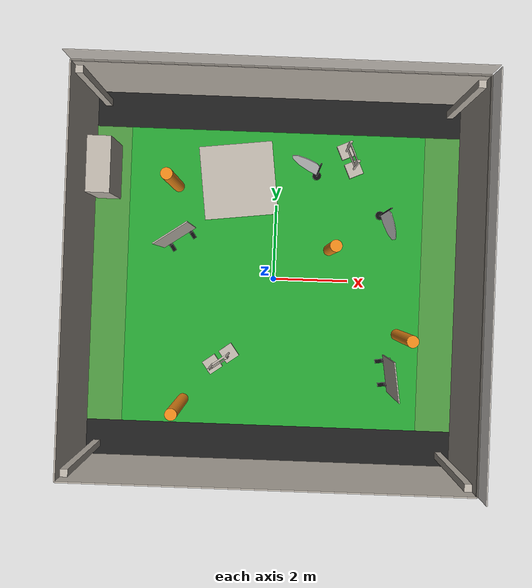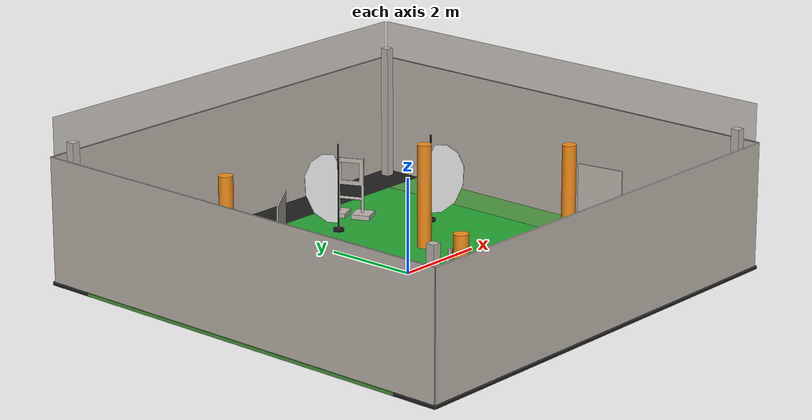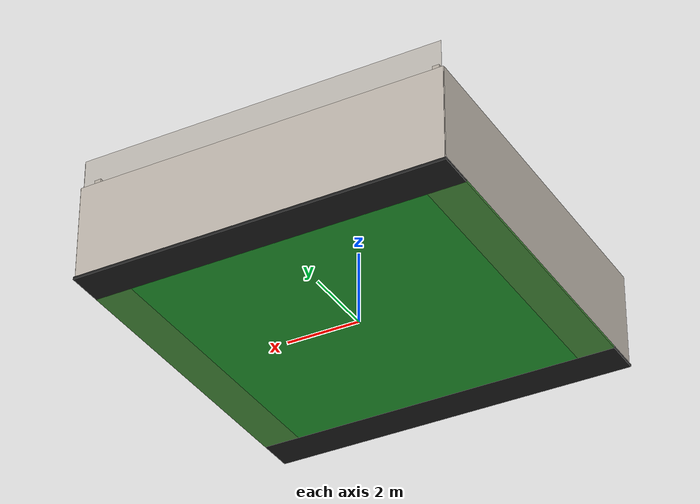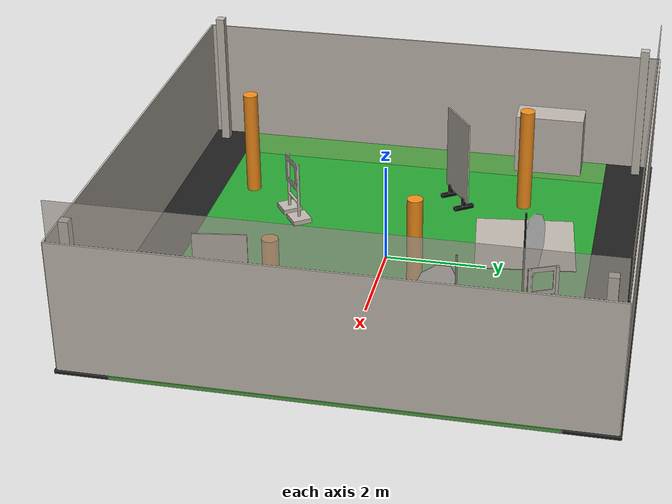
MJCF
<mujoco model="IMAV 2022 Nanocopter AI Challenge representative arena">
  <option integrator="RK4" density="1.225" viscosity="1.8e-5" timestep="0.001"/>
  <compiler inertiafromgeom="false" autolimits="true" angle="degree"/>
  <statistic center="0 0 1.2" extent="8"/>
  <visual>
    <headlight diffuse="0.48 0.48 0.48" ambient="0.30 0.30 0.30" specular="0 0 0"/>
    <global azimuth="135" elevation="-35" ellipsoidinertia="true"/>
  </visual>
  <asset>
    <texture name="imav_neutral_dome" type="skybox" builtin="gradient"
             rgb1="0.86 0.90 1.0" rgb2="0.16 0.19 0.25" width="512" height="3072"/>
    <!-- Byte-pinned textures shared with Isaac Lab's visual-fidelity-v3 scene. -->
    <texture name="imav_grass_green" type="2d" file="textures/imav22/grass_green.png"/>
    <texture name="imav_grass_black" type="2d" file="textures/imav22/grass_black.png"/>
    <texture name="imav_grass_blue" type="2d" file="textures/imav22/grass_blue.png"/>
    <texture name="imav_gate_fabric" type="2d" file="textures/imav22/GateTex.png"/>
    <texture name="imav_pole_fabric" type="2d" file="textures/imav22/orange_pole.png"/>
    <texture name="imav_panel_1_texture" type="2d" file="textures/imav22/metal_panel1.png"/>
    <texture name="imav_panel_3_texture" type="2d" file="textures/imav22/metal_panel3.png"/>
    <texture name="imav_flag_texture" type="2d" file="textures/imav22/flag_white_blue_proxy_v1.png"/>
    <texture name="imav_cyberzoo_curtain" type="2d" file="textures/imav22/wall_curtains.png"/>
    <texture name="imav_cyberzoo_net" type="2d" file="textures/imav22/net.png"/>
    <texture name="imav_padded_post_texture" type="2d" file="textures/imav22/padded_pole.png"/>
    <texture name="imav_cabinet_texture" type="2d" file="textures/imav22/cabinets.png"/>
    <texture name="imav_traffic_rug_texture" type="2d" file="textures/imav22/mat_traffic_1.png"/>
    <material name="imav_scoring_floor" texture="imav_grass_green" texrepeat="6 6" texuniform="true"
              reflectance="0.02" specular="0.03" shininess="0.04"/>
    <material name="imav_floor_black" texture="imav_grass_black" texrepeat="4 1" texuniform="true"/>
    <material name="imav_floor_blue" texture="imav_grass_blue" texrepeat="1 4" texuniform="true"/>
    <material name="imav_gate" texture="imav_gate_fabric" texrepeat="1 1" texuniform="true"
              specular="0.10" shininess="0.12"/>
    <material name="imav_pole" texture="imav_pole_fabric" texrepeat="1 1" texuniform="true"
              specular="0.08" shininess="0.10"/>
    <material name="imav_panel_1" texture="imav_panel_1_texture" texrepeat="1 1" texuniform="true"/>
    <material name="imav_panel_3" texture="imav_panel_3_texture" texrepeat="1 1" texuniform="true"/>
    <material name="imav_flag_white" texture="imav_flag_texture" texrepeat="1 1" texuniform="true"
              specular="0.03" shininess="0.05"/>
    <material name="imav_curtain_wall" texture="imav_cyberzoo_curtain" texrepeat="3 1" texuniform="true"/>
    <material name="imav_net" texture="imav_cyberzoo_net" texrepeat="12 1" texuniform="true" rgba="1 1 1 0.72"/>
    <material name="imav_padded_post" texture="imav_padded_post_texture" texrepeat="1 3" texuniform="true"/>
    <material name="imav_cabinet" texture="imav_cabinet_texture" texrepeat="1 1" texuniform="true"/>
    <material name="imav_traffic_rug" texture="imav_traffic_rug_texture" texrepeat="1 1" texuniform="true"/>
    <texture name="imav_blue_barrel_texture" type="2d" builtin="checker"
             rgb1="0.025 0.18 0.55" rgb2="0.06 0.42 0.82" width="256" height="256"/>
    <material name="imav_blue_barrel" texture="imav_blue_barrel_texture" texrepeat="10 4"
              texuniform="true" specular="0.22" shininess="0.25"/>
    <texture name="imav_wood_crate_texture" type="2d" builtin="checker"
             rgb1="0.42 0.20 0.07" rgb2="0.72 0.46 0.18" width="256" height="256"/>
    <material name="imav_wood_crate" texture="imav_wood_crate_texture" texrepeat="4 4"
              texuniform="true" specular="0.04" shininess="0.06"/>
    <texture name="imav_hazard_texture" type="2d" builtin="checker"
             rgb1="0.98 0.72 0.02" rgb2="0.025 0.025 0.025" width="256" height="256"/>
    <material name="imav_hazard" texture="imav_hazard_texture" texrepeat="14 3"
              texuniform="true" specular="0.08" shininess="0.10"/>
    <texture name="imav_curtain_texture" type="2d" builtin="checker"
             rgb1="0.72 0.08 0.10" rgb2="0.92 0.90 0.78" width="256" height="256"/>
    <material name="imav_curtain" texture="imav_curtain_texture" texrepeat="1 8"
              texuniform="true" specular="0.02" shininess="0.03"/>
    <material name="imav_frame" rgba="0.045 0.047 0.050 1" specular="0.04" shininess="0.05"/>
    <mesh name="imav_official_gate_mesh" file="textures/imav22/imav2022-gate.obj"/>
    <mesh name="imav_feather_flag_mesh" file="textures/imav22/feather_flag_proxy.obj"/>
  </asset>
  <worldbody>
    <camera name="imav22_overview" pos="0 -7.2 6.4" xyaxes="1 0 0 0 0.66 0.75" fovy="60"/>
    <camera name="imav22_start_preview" pos="0 0 0.5" xyaxes="0 -1 0 0 0 1" fovy="83.6091095"/>
    <camera name="imav22_gate_1_approach" pos="-1.2 -0.75 1.0"
            xyaxes="-0.326 0.945 0 0 0 1" fovy="83.6091095"/>
    <camera name="imav22_gate_2_approach" pos="1.2 0.65 1.0"
            xyaxes="0.555 -0.832 0 0 0 1" fovy="83.6091095"/>
    <camera name="imav22_obstacle_corridor" pos="-0.2 -2.8 0.65"
            xyaxes="0.981 -0.196 0 0 0 1" fovy="83.6091095"/>
    <!-- Isaac uses a neutral dome plus warm distant light and deliberately no ceiling. -->
    <light name="cyberzoo_key" pos="-3 -4 8" dir="0.28 0.18 -0.94" directional="true"
           diffuse="1.0 0.94 0.84" specular="0.08 0.08 0.08"/>
    <!-- Exact visual-fidelity-v3 floor split: 8 m scoring turf and 1 m perimeter strips. -->
    <geom name="imav_scoring_floor" type="box" pos="0 0 -0.035" size="4 4 0.035"
          material="imav_scoring_floor" contype="1" conaffinity="1"/>
    <geom name="imav_floor_north" type="box" pos="0 4.5 -0.035" size="5 0.5 0.035" material="imav_floor_black"/>
    <geom name="imav_floor_south" type="box" pos="0 -4.5 -0.035" size="5 0.5 0.035" material="imav_floor_black"/>
    <geom name="imav_floor_east" type="box" pos="4.5 0 -0.035" size="0.5 4 0.035" material="imav_floor_blue"/>
    <geom name="imav_floor_west" type="box" pos="-4.5 0 -0.035" size="0.5 4 0.035" material="imav_floor_blue"/>
    <geom name="imav_traffic_rug" type="box" pos="-1.05 2.65 0.006" size="1 1 0.006"
          euler="0 0 6.875494" material="imav_traffic_rug" contype="0" conaffinity="0"/>

    <!-- Visual-only Cyberzoo curtain/net perimeter and restrained venue clutter. -->
    <geom name="imav_room_wall_north" type="box" pos="0 4.96 1.30" size="4.96 0.0175 1.30" material="imav_curtain_wall" contype="0" conaffinity="0"/>
    <geom name="imav_room_wall_south" type="box" pos="0 -4.96 1.30" size="4.96 0.0175 1.30" material="imav_curtain_wall" contype="0" conaffinity="0"/>
    <geom name="imav_room_wall_east" type="box" pos="4.96 0 1.30" size="0.0175 4.96 1.30" material="imav_curtain_wall" contype="0" conaffinity="0"/>
    <geom name="imav_room_wall_west" type="box" pos="-4.96 0 1.30" size="0.0175 4.96 1.30" material="imav_curtain_wall" contype="0" conaffinity="0"/>
    <geom name="imav_venue_north_net" type="box" pos="0 4.93 3.0" size="4.9 0.008 0.4" material="imav_net" contype="0" conaffinity="0"/>
    <geom name="imav_venue_east_net" type="box" pos="4.93 0 3.0" size="0.008 4.9 0.4" material="imav_net" contype="0" conaffinity="0"/>
    <geom name="imav_venue_post_0" type="box" pos="-4.65 -4.65 1.45" size="0.09 0.09 1.45" material="imav_padded_post" contype="0" conaffinity="0"/>
    <geom name="imav_venue_post_1" type="box" pos="4.65 -4.65 1.45" size="0.09 0.09 1.45" material="imav_padded_post" contype="0" conaffinity="0"/>
    <geom name="imav_venue_post_2" type="box" pos="4.65 4.65 1.45" size="0.09 0.09 1.45" material="imav_padded_post" contype="0" conaffinity="0"/>
    <geom name="imav_venue_post_3" type="box" pos="-4.65 4.65 1.45" size="0.09 0.09 1.45" material="imav_padded_post" contype="0" conaffinity="0"/>
    <geom name="imav_venue_cabinet" type="box" pos="-4.56 2.75 0.65" size="0.31 0.725 0.65" material="imav_cabinet" contype="0" conaffinity="0"/>

    <!-- Accepted Isaac seed-22 layout. Gate rails are invisible analytic collision geometry;
         the official DAE-derived UV mesh supplies the complete stand and fabric visual. -->
    <body name="imav_gate_1" pos="-1.3577944002 -2.2223674651 1.0" euler="0 0 125.931393">
      <geom name="imav_gate_1_left" type="box" pos="0 -0.247 0" size="0.04 0.047 0.20" rgba="1 1 1 0"/>
      <geom name="imav_gate_1_right" type="box" pos="0 0.247 0" size="0.04 0.047 0.20" rgba="1 1 1 0"/>
      <geom name="imav_gate_1_top" type="box" pos="0 0 0.247" size="0.04 0.294 0.047" rgba="1 1 1 0"/>
      <geom name="imav_gate_1_bottom" type="box" pos="0 0 -0.247" size="0.04 0.294 0.047" rgba="1 1 1 0"/>
      <geom name="imav_gate_1_visual" type="mesh" mesh="imav_official_gate_mesh" pos="0 0 -1" euler="0 0 -90"
            material="imav_gate" contype="0" conaffinity="0"/>
    </body>
    <body name="imav_gate_2" pos="1.9647847572 3.3076693734 1.0" euler="0 0 23.872089">
      <geom name="imav_gate_2_left" type="box" pos="0 -0.247 0" size="0.04 0.047 0.20" rgba="1 1 1 0"/>
      <geom name="imav_gate_2_right" type="box" pos="0 0.247 0" size="0.04 0.047 0.20" rgba="1 1 1 0"/>
      <geom name="imav_gate_2_top" type="box" pos="0 0 0.247" size="0.04 0.294 0.047" rgba="1 1 1 0"/>
      <geom name="imav_gate_2_bottom" type="box" pos="0 0 -0.247" size="0.04 0.294 0.047" rgba="1 1 1 0"/>
      <geom name="imav_gate_2_visual" type="mesh" mesh="imav_official_gate_mesh" pos="0 0 -1" euler="0 0 -90"
            material="imav_gate" contype="0" conaffinity="0"/>
    </body>

    <!-- All non-gate objects are mocap bodies so relocated mode can cycle one object/event. -->
    <body name="imav_dynamic_panel_1" mocap="true" pos="3.0974954076 -2.4311083311 1.1" euler="0 0 -171.497623">
      <geom name="imav_black_panel_1" type="box" size="0.015 0.50 0.90" material="imav_panel_1"/>
      <geom name="imav_black_panel_1_foot_left" type="box" pos="0 -0.32 -1.065" size="0.215 0.05 0.035" material="imav_frame"/>
      <geom name="imav_black_panel_1_foot_right" type="box" pos="0 0.32 -1.065" size="0.215 0.05 0.035" material="imav_frame"/>
      <geom name="imav_black_panel_1_support_left" type="box" pos="0 -0.32 -0.97" size="0.04 0.04 0.13" material="imav_frame"/>
      <geom name="imav_black_panel_1_support_right" type="box" pos="0 0.32 -0.97" size="0.04 0.04 0.13" material="imav_frame"/>
    </body>
    <site name="imav_dynamic_panel_1_target" pos="0.4402079849 -2.2838900160 1.1" euler="0 0 -31.194309" size="0.01" rgba="0 0 0 0"/>
    <body name="imav_dynamic_panel_2" mocap="true" pos="-2.5647976527 1.0236075862 1.1" euler="0 0 -55.567855">
      <geom name="imav_black_panel_2" type="box" size="0.015 0.50 0.90" material="imav_panel_3"/>
      <geom name="imav_black_panel_2_foot_left" type="box" pos="0 -0.32 -1.065" size="0.215 0.05 0.035" material="imav_frame"/>
      <geom name="imav_black_panel_2_foot_right" type="box" pos="0 0.32 -1.065" size="0.215 0.05 0.035" material="imav_frame"/>
      <geom name="imav_black_panel_2_support_left" type="box" pos="0 -0.32 -0.97" size="0.04 0.04 0.13" material="imav_frame"/>
      <geom name="imav_black_panel_2_support_right" type="box" pos="0 0.32 -0.97" size="0.04 0.04 0.13" material="imav_frame"/>
    </body>
    <site name="imav_dynamic_panel_2_target" pos="-2.7485253822 -1.6308951545 1.1" euler="0 0 -166.073864" size="0.01" rgba="0 0 0 0"/>

    <body name="imav_dynamic_flag_1" mocap="true" pos="0.7039503286 3.0073297262 0" euler="0 0 66.693055">
      <geom name="imav_flag_1_collision" type="box" pos="0 0 0.95" size="0.0225 0.40 0.775" rgba="1 1 1 0"/>
      <geom name="imav_flag_1_cloth" type="mesh" mesh="imav_feather_flag_mesh" material="imav_flag_white" contype="0" conaffinity="0"/>
      <geom name="imav_flag_1_mast" type="cylinder" pos="0 -0.40 0.95" size="0.018 0.95" material="imav_frame"/>
      <geom name="imav_flag_1_base" type="cylinder" pos="0 -0.40 0.0275" size="0.115 0.0275" material="imav_frame"/>
    </body>
    <site name="imav_dynamic_flag_1_target" pos="-2.1159225292 3.0749679212 0" euler="0 0 -27.442781" size="0.01" rgba="0 0 0 0"/>
    <body name="imav_dynamic_flag_2" mocap="true" pos="2.9499902138 1.4484802663 0" euler="0 0 -162.562696">
      <geom name="imav_flag_2_collision" type="box" pos="0 0 0.95" size="0.0225 0.40 0.775" rgba="1 1 1 0"/>
      <geom name="imav_flag_2_cloth" type="mesh" mesh="imav_feather_flag_mesh" material="imav_flag_white" contype="0" conaffinity="0"/>
      <geom name="imav_flag_2_mast" type="cylinder" pos="0 -0.40 0.95" size="0.018 0.95" material="imav_frame"/>
      <geom name="imav_flag_2_base" type="cylinder" pos="0 -0.40 0.0275" size="0.115 0.0275" material="imav_frame"/>
    </body>
    <site name="imav_dynamic_flag_2_target" pos="-1.8949594634 -0.2545505311 0" euler="0 0 63.924825" size="0.01" rgba="0 0 0 0"/>

    <body name="imav_dynamic_pole_1" mocap="true" pos="1.4799543987 0.8379416674 1.1"><geom name="imav_orange_pole_1" type="cylinder" size="0.15 1.1" material="imav_pole"/></body>
    <site name="imav_dynamic_pole_1_target" pos="1.0407229175 2.8344015232 1.1" size="0.01" rgba="0 0 0 0"/>
    <body name="imav_dynamic_pole_2" mocap="true" pos="3.4071090042 -1.3989561011 1.1"><geom name="imav_orange_pole_2" type="cylinder" size="0.15 1.1" material="imav_pole"/></body>
    <site name="imav_dynamic_pole_2_target" pos="-0.8592885713 1.9347568474 1.1" size="0.01" rgba="0 0 0 0"/>
    <body name="imav_dynamic_pole_3" mocap="true" pos="-2.6690135103 2.4261856523 1.1"><geom name="imav_orange_pole_3" type="cylinder" size="0.15 1.1" material="imav_pole"/></body>
    <site name="imav_dynamic_pole_3_target" pos="-0.3023757739 -3.4692234357 1.1" size="0.01" rgba="0 0 0 0"/>
    <body name="imav_dynamic_pole_4" mocap="true" pos="-2.3496883601 -3.3635266966 1.1"><geom name="imav_orange_pole_4" type="cylinder" size="0.15 1.1" material="imav_pole"/></body>
    <site name="imav_dynamic_pole_4_target" pos="-3.3196397546 0.9933896243 1.1" size="0.01" rgba="0 0 0 0"/>

    <!-- Optional robustness objects. CrazySim enables these only for the extended set. -->
    <body name="imav_extra_barrel" pos="-2.55 -2.65 0.60">
      <geom name="imav_extra_barrel_shell" type="cylinder" size="0.25 0.60"
            material="imav_blue_barrel" rgba="1 1 1 0" contype="0" conaffinity="0"/>
      <geom name="imav_extra_barrel_band_top" type="cylinder" pos="0 0 0.43" size="0.265 0.035"
            material="imav_hazard" rgba="1 1 1 0" contype="0" conaffinity="0"/>
      <geom name="imav_extra_barrel_band_bottom" type="cylinder" pos="0 0 -0.43" size="0.265 0.035"
            material="imav_hazard" rgba="1 1 1 0" contype="0" conaffinity="0"/>
    </body>
    <body name="imav_extra_crate" pos="2.55 2.90 0.40" euler="0 0 22">
      <geom name="imav_extra_crate_box" type="box" size="0.38 0.38 0.40"
            material="imav_wood_crate" rgba="1 1 1 0" contype="0" conaffinity="0"/>
      <geom name="imav_extra_crate_strap" type="box" size="0.40 0.055 0.41"
            material="imav_hazard" rgba="1 1 1 0" contype="0" conaffinity="0"/>
    </body>
    <body name="imav_extra_curtain" pos="-2.80 -0.10 0.95" euler="0 0 -12">
      <geom name="imav_extra_curtain_panel" type="box" size="0.025 0.62 0.95"
            material="imav_curtain" rgba="1 1 1 0" contype="0" conaffinity="0"/>
    </body>
    <body name="imav_extra_beam" pos="1.05 3.30 0.75" euler="0 0 8">
      <geom name="imav_extra_beam_bar" type="box" size="0.075 0.85 0.075"
            material="imav_hazard" rgba="1 1 1 0" contype="0" conaffinity="0"/>
      <geom name="imav_extra_beam_post_left" type="cylinder" pos="0 -0.76 -0.35" size="0.055 0.40"
            material="imav_hazard" rgba="1 1 1 0" contype="0" conaffinity="0"/>
      <geom name="imav_extra_beam_post_right" type="cylinder" pos="0 0.76 -0.35" size="0.055 0.40"
            material="imav_hazard" rgba="1 1 1 0" contype="0" conaffinity="0"/>
    </body>
    <body name="imav_extra_bollards" pos="0.95 -3.25 0.55">
      <geom name="imav_extra_bollard_left" type="capsule" pos="0 -0.30 0" size="0.09 0.46"
            material="imav_hazard" rgba="1 1 1 0" contype="0" conaffinity="0"/>
      <geom name="imav_extra_bollard_right" type="capsule" pos="0 0.30 0" size="0.09 0.46"
            material="imav_hazard" rgba="1 1 1 0" contype="0" conaffinity="0"/>
    </body>
  </worldbody>
</mujoco>
